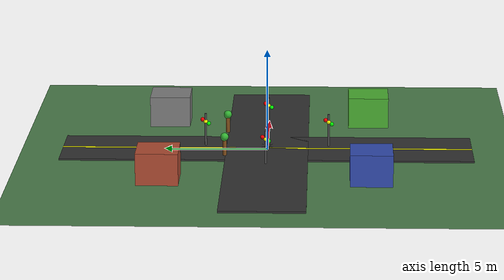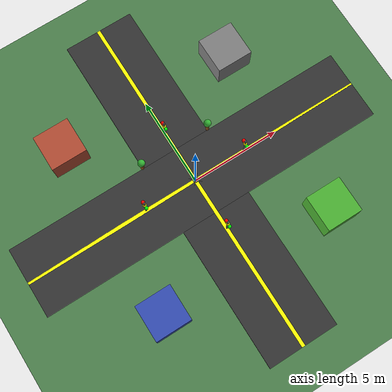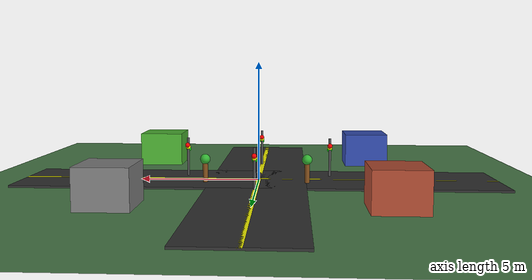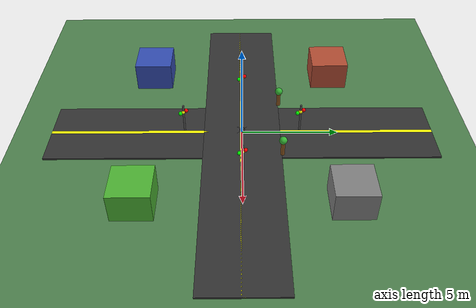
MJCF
<?xml version="1.0" encoding="UTF-8"?>
<mujoco model="quadrotor_city_traffic">
  <option timestep="0.005"/>

  <worldbody>
    <!-- 光照 -->
    <light name="sun" pos="0 0 10"/>

    <!-- 地面 -->
    <geom name="ground" type="plane" pos="0 0 0" size="12 12 0.1" rgba="0.3 0.5 0.3 1"/>

    <!-- 道路 -->
    <geom name="road_h" type="box" pos="0 0 0.01" size="10 2 0.05" rgba="0.2 0.2 0.2 1"/>
    <geom name="road_v" type="box" pos="0 0 0.01" size="2 10 0.05" rgba="0.2 0.2 0.2 1"/>

    <!-- 道路标线 -->
    <geom name="line_h" type="box" pos="0 0 0.04" size="10 0.1 0.02" rgba="1 1 0 1"/>
    <geom name="line_v" type="box" pos="0 0 0.04" size="0.1 10 0.02" rgba="1 1 0 1"/>

    <!-- 红绿灯 - 北 -->
    <body name="traffic_light_north" pos="0 3 0.5">
      <geom name="pole_n" type="cylinder" size="0.05 0.8" pos="0 0 0.5" rgba="0.3 0.3 0.3 1"/>
      <geom name="red_n" type="sphere" size="0.1" pos="0 0.15 1.0" rgba="1 0 0 1"/>
      <geom name="yellow_n" type="sphere" size="0.1" pos="0 0 0.9" rgba="1 1 0 1"/>
      <geom name="green_n" type="sphere" size="0.1" pos="0 -0.15 0.8" rgba="0 1 0 1"/>
    </body>

    <!-- 红绿灯 - 南 -->
    <body name="traffic_light_south" pos="0 -3 0.5">
      <geom name="pole_s" type="cylinder" size="0.05 0.8" pos="0 0 0.5" rgba="0.3 0.3 0.3 1"/>
      <geom name="red_s" type="sphere" size="0.1" pos="0 0.15 1.0" rgba="1 0 0 1"/>
      <geom name="yellow_s" type="sphere" size="0.1" pos="0 0 0.9" rgba="1 1 0 1"/>
      <geom name="green_s" type="sphere" size="0.1" pos="0 -0.15 0.8" rgba="0 1 0 1"/>
    </body>

    <!-- 红绿灯 - 东 -->
    <body name="traffic_light_east" pos="3 0 0.5">
      <geom name="pole_e" type="cylinder" size="0.05 0.8" pos="0 0 0.5" rgba="0.3 0.3 0.3 1"/>
      <geom name="red_e" type="sphere" size="0.1" pos="0 0.15 1.0" rgba="1 0 0 1"/>
      <geom name="yellow_e" type="sphere" size="0.1" pos="0 0 0.9" rgba="1 1 0 1"/>
      <geom name="green_e" type="sphere" size="0.1" pos="0 -0.15 0.8" rgba="0 1 0 1"/>
    </body>

    <!-- 红绿灯 - 西 -->
    <body name="traffic_light_west" pos="-3 0 0.5">
      <geom name="pole_w" type="cylinder" size="0.05 0.8" pos="0 0 0.5" rgba="0.3 0.3 0.3 1"/>
      <geom name="red_w" type="sphere" size="0.1" pos="0 0.15 1.0" rgba="1 0 0 1"/>
      <geom name="yellow_w" type="sphere" size="0.1" pos="0 0 0.9" rgba="1 1 0 1"/>
      <geom name="green_w" type="sphere" size="0.1" pos="0 -0.15 0.8" rgba="0 1 0 1"/>
    </body>

    <!-- 建筑 -->
    <body name="building1" pos="5 5 0.5">
      <geom name="b1" type="box" size="1 1 1" rgba="0.5 0.5 0.5 1"/>
    </body>

    <body name="building2" pos="-5 5 0.5">
      <geom name="b2" type="box" size="1 1 1" rgba="0.7 0.3 0.2 1"/>
    </body>

    <body name="building3" pos="5 -5 0.5">
      <geom name="b3" type="box" size="1 1 1" rgba="0.3 0.7 0.2 1"/>
    </body>

    <body name="building4" pos="-5 -5 0.5">
      <geom name="b4" type="box" size="1 1 1" rgba="0.2 0.3 0.7 1"/>
    </body>

    <!-- 树木 -->
    <body name="tree1" pos="2 2 0.5">
      <geom name="trunk1" type="cylinder" size="0.1 0.5" pos="0 0 0.3" rgba="0.5 0.3 0.1 1"/>
      <geom name="leaves1" type="sphere" size="0.2" pos="0 0 0.7" rgba="0.2 0.7 0.2 1"/>
    </body>

    <body name="tree2" pos="-2 2 0.5">
      <geom name="trunk2" type="cylinder" size="0.1 0.5" pos="0 0 0.3" rgba="0.5 0.3 0.1 1"/>
      <geom name="leaves2" type="sphere" size="0.2" pos="0 0 0.7" rgba="0.2 0.7 0.2 1"/>
    </body>

    <!-- 无人机 -->
    <body name="quadrotor" pos="0 0 0.2">
      <joint name="quad_free_joint" type="free"/>
      <geom name="body" type="sphere" size="0.15" rgba="0.1 0.1 0.1 1"/>
      <geom name="arm1" type="capsule" fromto="0.1 0.1 0 0.25 0.25 0" size="0.01"/>
      <geom name="arm2" type="capsule" fromto="0.1 -0.1 0 0.25 -0.25 0" size="0.01"/>
      <geom name="arm3" type="capsule" fromto="-0.1 -0.1 0 -0.25 -0.25 0" size="0.01"/>
      <geom name="arm4" type="capsule" fromto="-0.1 0.1 0 -0.25 0.25 0" size="0.01"/>
    </body>
  </worldbody>

  <actuator>
    <motor name="motor1" joint="quad_free_joint" gear="1"/>
  </actuator>
</mujoco>
